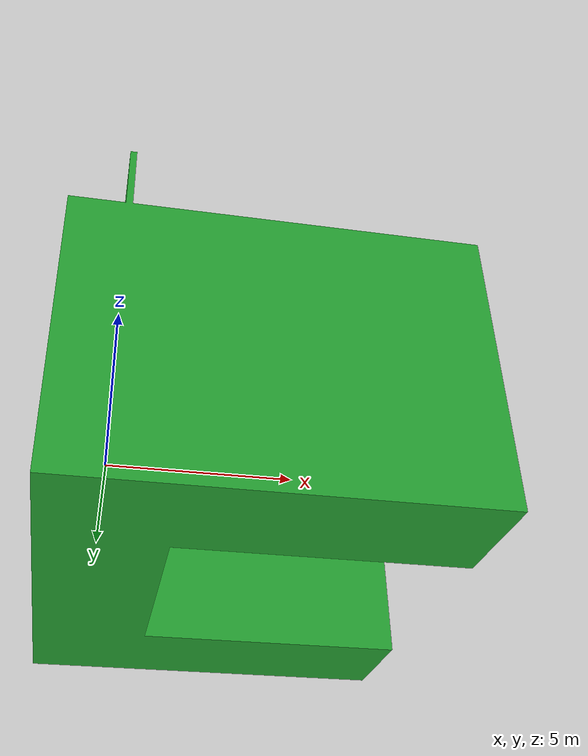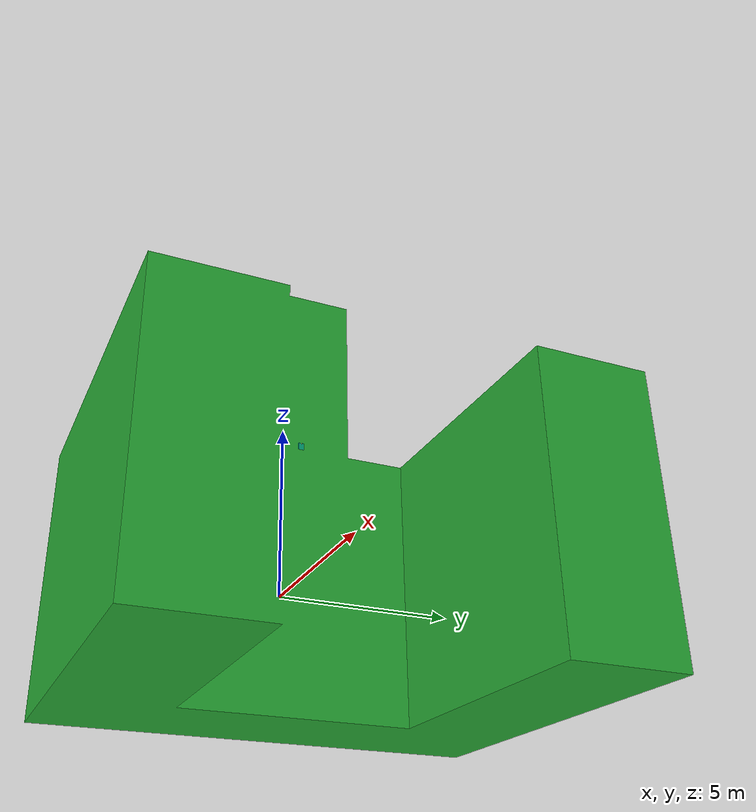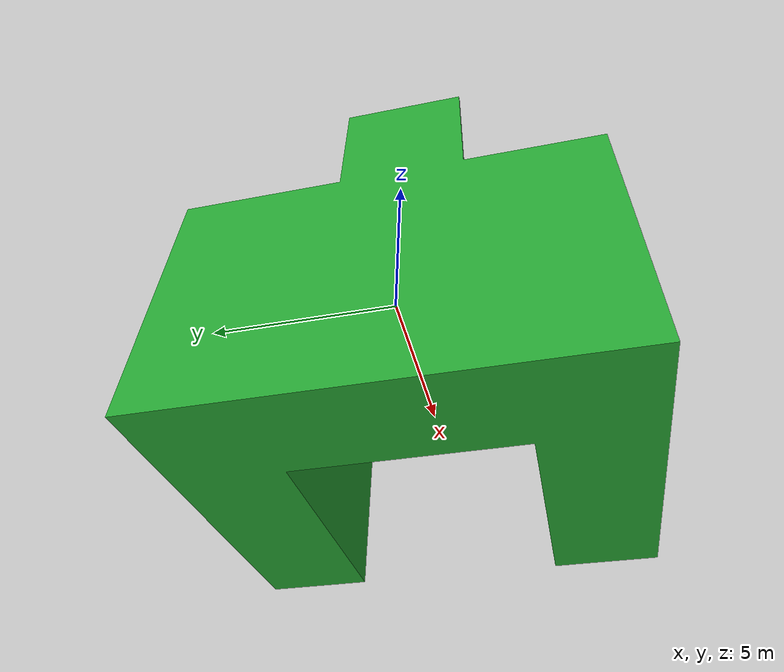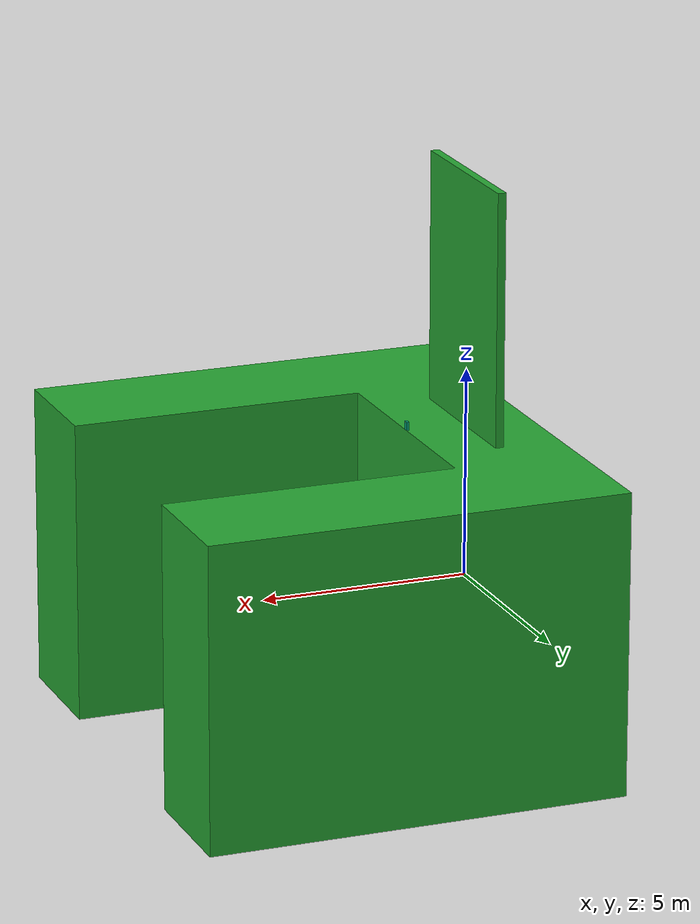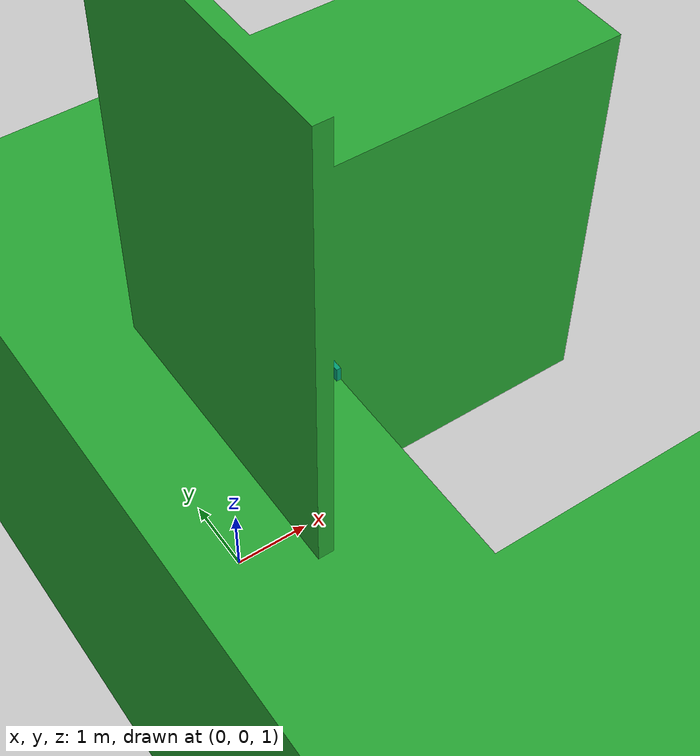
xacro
<?xml version="1.0"?>

<robot name="mol" xmlns:xacro="http://www.ros.org/wiki/xacro">
    <link name="world">
    <inertial>
      <mass value="1"/>
      <inertia ixx="0.0" ixy="0.0" ixz="0.0" iyy="0.0" iyz="0.0" izz="0.0"/>
    </inertial>
    </link>

    <link name="base_link">
    <visual>
      <geometry>
       <mesh filename="file:///Users/matthew.huang/dev_ws/src/my_package/meshes/DOCK2.dae"/>
      </geometry>
    </visual>
    <collision name="base_link_collision">
      <geometry>
       <mesh filename="file:///Users/matthew.huang/dev_ws/src/my_package/meshes/DOCK2.dae"/>
      </geometry>
    </collision>
    <inertial>
      <mass value="1"/>
      <inertia ixx="0.0" ixy="0.0" ixz="0.0" iyy="0.0" iyz="0.0" izz="0.0"/>
    </inertial>
  </link>

  <joint name="base_link_joint" type="fixed">
    <origin xyz="0 0 0.1" rpy="0 0 1.5708"/>
    <parent link="world"/>
    <child link="base_link"/>
  </joint>

    <!-- camera_joint describes where the camera is relative to the arm -->
    <!-- - Even though the camera isn't moving relative to the arm, it will probably be helpful to have its own link/frame rather than just adding more visuals to the arm -->
    <!-- - For this example, the camera_link origin will be 0.05m above base (3m tall) Origin =0.05 +3/2-->
    <joint name="box_joint" type="fixed">
        <origin xyz="0 -1.47 3.6191" rpy="0 0 -1.5708"/>
        <parent link="base_link"/>
        <child link="box_link"/>
    </joint>

    <!-- Box Link -->
    <link name="box_link">
        <collision>
            <origin xyz="0 0 0.1" rpy="0 0 0"/>
            <geometry>
                <box size="0.06 0.15 0.2"/>
            </geometry>
        </collision>

        <visual>
            <origin xyz="0 0 0.1" rpy="0 0 0"/>
            <geometry>
                <box size="0.06 0.15 0.2"/>
            </geometry>
        </visual>

        <inertial>
            <origin xyz="0 0 0.1" rpy="0 0 0"/>
            <mass value="1"/>
            <inertia
                ixx="1.0" ixy="0.0" ixz="0.0"
                iyy="1.0" iyz="0.0"
                izz="1.0"/>
        </inertial>
    </link>

    <joint name="camera_joint" type="fixed">
        <origin xyz="0.01 0 0.18" rpy="0 0 0"/>
        <parent link="box_link"/>
        <child link="camera_link"/>
    </joint>

    <link name="camera_link">
        <visual>
            <origin xyz="0 0 0" rpy="0 1.5708 0"/>
            <geometry>
                <cylinder length="0.06" radius="0.01" />
            </geometry>
        </visual>
        <collision>
            <origin xyz="0 0 0" rpy="0 1.5708 0"/>
            <geometry>
                <cylinder length="0.06" radius="0.01" />
            </geometry>
        </collision>
    </link>

    <gazebo>
    <static>true</static>
      <model name='flashlight'>
       <!-- flashlight x = 1.47 to center of terminal then +0.03  -->
        <pose>1.5 -0.05 3.8991 0 -1.5708 0</pose>
        <link name='light_source'>
          <pose>0 0 0.0 0 0 0</pose>
          <inertial>
            <mass>0.0025</mass>
            <inertia>
              <ixx>1.0e-05</ixx>
              <ixy>0</ixy>
              <ixz>0</ixz>
              <iyy>1.0e-05</iyy>
              <iyz>0</iyz>
              <izz>1.0e-05</izz>
            </inertia>
          </inertial>
          <light name='lamp' type='spot'>
            <pose>0 0 0.0 0 0 0</pose>
            <attenuation>
              <range>1</range>
              <linear>0</linear>
              <constant>0.1</constant>
              <quadratic>0.01</quadratic>
            </attenuation>
            <diffuse>1 0 0 1</diffuse>
            <specular>1 0 0 1</specular>
            <spot>
              <inner_angle>1</inner_angle>
              <outer_angle>1.1</outer_angle>
              <falloff>1</falloff>
            </spot>
            <direction>0 0 -1</direction>
          </light>
          <visual name='lamp'>
            <geometry>
              <cylinder>
                <radius>0.019</radius>
                <length>0.005</length>s
              </cylinder>
            </geometry>
            <transparency>0.8</transparency>
            <material>
              <ambient>1 0.2 0.2 1</ambient>
              <diffuse>1 0.2 0.2 1</diffuse>
              <specular>1 1 1 1</specular>
              <emissive>1 0.2 0.2 1</emissive>
            </material>
          </visual>
        </link>
        <plugin name='light_control' filename='libledPlugin.so'>
              <enable>true</enable>
              <light>
                <id>light_source/lamp</id>
                <duration>0.5</duration>
                <interval>0.5</interval>
              </light>
        </plugin>
      </model>
    </gazebo>
    <gazebo>
      <joint name='flashlight_joint' type='fixed'>
        <parent>world</parent>
        <child>flashlight::light_source</child>
      </joint>
    </gazebo>
    <xacro:include filename="example_gazebo.xacro" />

</robot>

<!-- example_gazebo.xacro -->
<robot xmlns:xacro="http://www.ros.org/wiki/xacro">

    <!-- To include it add the following line -->

    <!-- Instead, we need to add gazebo tags for our links that refer to Gazebo materials -->

    <gazebo reference="base_link">
        <material>Gazebo/Green</material>
    </gazebo>

     <!-- The next section shows an example of adding a sensor, in this case a depth camera. -->

    <!-- First, create the link and joint for the optical frame -->

    <joint name="camera_optical_joint" type="fixed">
        <origin xyz="0 0 0" rpy="-1.571 0 -1.571" />
        <parent link="camera_link" />
        <child link="camera_link_optical" />
    </joint>

    <link name="camera_link_optical"></link>

    <!-- Add a gazebo tag for the ORIGINAL camera_link (but in the plugin we reference the optical frame so that ROS can orient things correctly) -->
    <!-- Note that although visualise is set to true, it won't actually visualise the depth camera in gazebo. To see the preview,
            try swapping "depth" to "camera"-->
    <gazebo reference="camera_link">
        <sensor type="camera" name="my_camera">
            <update_rate>30</update_rate>
            <visualize>1</visualize>
            <camera name='cam'>
            \
            <horizontal_fov>1.778</horizontal_fov>
            <image>
                <width>4608</width>
                <height>2592</height>
                <format>L_INT8</format>

            </image>
            <clip>
                <near>0.02</near>
                <far>300</far>
            </clip>
          <noise>
            <type>gaussian</type>
            <mean>0</mean>
            <stddev>0.007</stddev>
          </noise>
        </camera>

            <plugin name="camera_controller" filename="libgazebo_ros_camera.so">
            <robotNamespace>robot_1_camera</robotNamespace>
                <frame_name>camera_link_optical</frame_name>
                <min_depth>0.1</min_depth>
                <max_depth>500</max_depth>
            </plugin>
        </sensor>
    </gazebo>

</robot>
